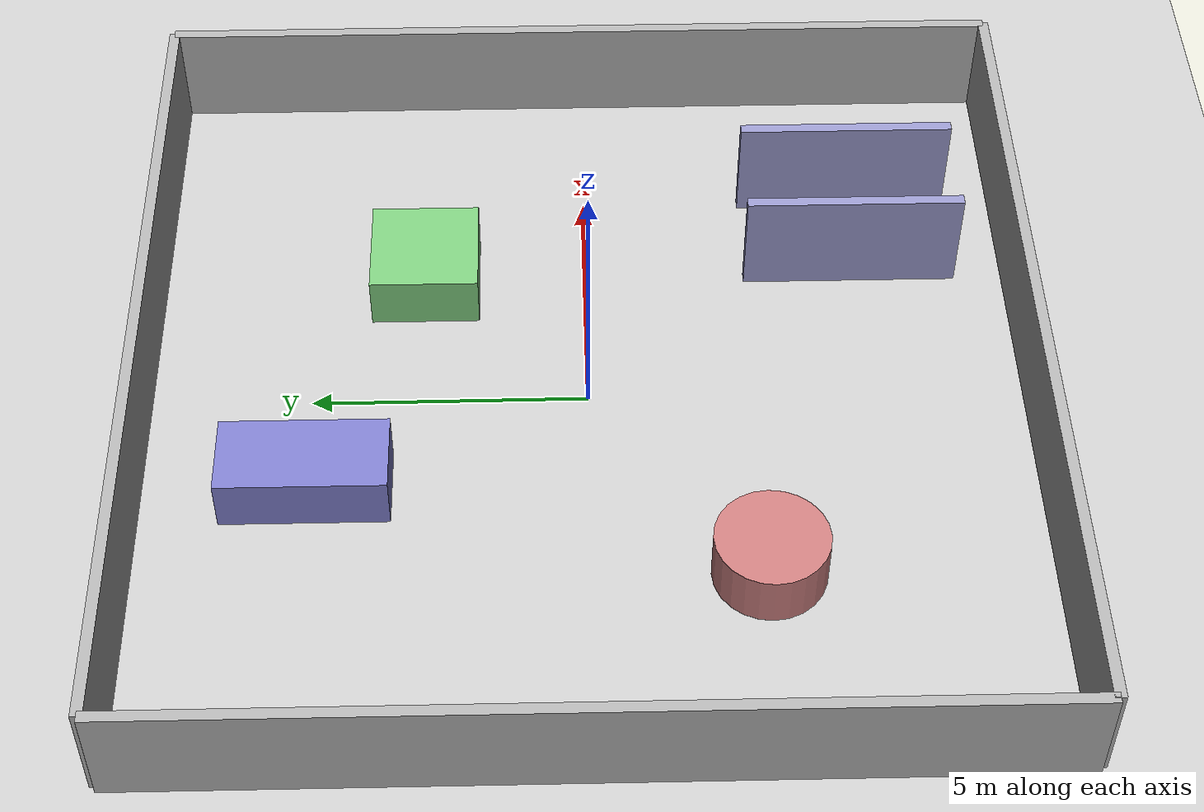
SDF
<?xml version="1.0" ?>
<sdf version="1.8">
  <world name="mapping_world">
    <!-- Essential Gazebo Harmonic plugins -->
    <plugin filename="gz-sim-physics-system" name="gz::sim::systems::Physics"/>
    <plugin filename="gz-sim-user-commands-system" name="gz::sim::systems::UserCommands"/>
    <plugin filename="gz-sim-scene-broadcaster-system" name="gz::sim::systems::SceneBroadcaster"/>
    <plugin filename="gz-sim-sensors-system" name="gz::sim::systems::Sensors">
      <render_engine>ogre2</render_engine>
    </plugin>
    <plugin filename="gz-sim-imu-system" name="gz::sim::systems::Imu"/>

    <!-- Physics settings optimized for simulation -->
    <physics name="1ms" type="ignored">
      <max_step_size>0.001</max_step_size>
      <real_time_factor>1.0</real_time_factor>
    </physics>

    <!-- Ground plane -->
    <include>
      <uri>https://fuel.gazebosim.org/1.0/OpenRobotics/models/Ground Plane</uri>
    </include>

    <!-- Sun for lighting -->
    <include>
      <uri>https://fuel.gazebosim.org/1.0/OpenRobotics/models/Sun</uri>
    </include>

    <!-- Simple room structure for autonomous mapping -->

    <!-- Outer walls -->
    <model name="wall_north">
      <static>true</static>
      <pose>0 8 1 0 0 0</pose>
      <link name="link">
        <collision name="collision">
          <geometry>
            <box>
              <size>16 0.2 2</size>
            </box>
          </geometry>
        </collision>
        <visual name="visual">
          <geometry>
            <box>
              <size>16 0.2 2</size>
            </box>
          </geometry>
          <material>
            <ambient>0.7 0.7 0.7 1</ambient>
            <diffuse>0.7 0.7 0.7 1</diffuse>
          </material>
        </visual>
      </link>
    </model>

    <model name="wall_south">
      <static>true</static>
      <pose>0 -8 1 0 0 0</pose>
      <link name="link">
        <collision name="collision">
          <geometry>
            <box>
              <size>16 0.2 2</size>
            </box>
          </geometry>
        </collision>
        <visual name="visual">
          <geometry>
            <box>
              <size>16 0.2 2</size>
            </box>
          </geometry>
          <material>
            <ambient>0.7 0.7 0.7 1</ambient>
            <diffuse>0.7 0.7 0.7 1</diffuse>
          </material>
        </visual>
      </link>
    </model>

    <model name="wall_east">
      <static>true</static>
      <pose>8 0 1 0 0 0</pose>
      <link name="link">
        <collision name="collision">
          <geometry>
            <box>
              <size>0.2 16 2</size>
            </box>
          </geometry>
        </collision>
        <visual name="visual">
          <geometry>
            <box>
              <size>0.2 16 2</size>
            </box>
          </geometry>
          <material>
            <ambient>0.7 0.7 0.7 1</ambient>
            <diffuse>0.7 0.7 0.7 1</diffuse>
          </material>
        </visual>
      </link>
    </model>

    <model name="wall_west">
      <static>true</static>
      <pose>-8 0 1 0 0 0</pose>
      <link name="link">
        <collision name="collision">
          <geometry>
            <box>
              <size>0.2 16 2</size>
            </box>
          </geometry>
        </collision>
        <visual name="visual">
          <geometry>
            <box>
              <size>0.2 16 2</size>
            </box>
          </geometry>
          <material>
            <ambient>0.7 0.7 0.7 1</ambient>
            <diffuse>0.7 0.7 0.7 1</diffuse>
          </material>
        </visual>
      </link>
    </model>

    <!-- Interior obstacles for interesting mapping -->
    <model name="obstacle_1">
      <static>true</static>
      <pose>3 3 0.5 0 0 0</pose>
      <link name="link">
        <collision name="collision">
          <geometry>
            <box>
              <size>2 2 1</size>
            </box>
          </geometry>
        </collision>
        <visual name="visual">
          <geometry>
            <box>
              <size>2 2 1</size>
            </box>
          </geometry>
          <material>
            <ambient>0.5 0.8 0.5 1</ambient>
            <diffuse>0.5 0.8 0.5 1</diffuse>
          </material>
        </visual>
      </link>
    </model>

    <model name="obstacle_2">
      <static>true</static>
      <pose>-4 -3 0.5 0 0 0</pose>
      <link name="link">
        <collision name="collision">
          <geometry>
            <cylinder>
              <radius>1</radius>
              <length>1</length>
            </cylinder>
          </geometry>
        </collision>
        <visual name="visual">
          <geometry>
            <cylinder>
              <radius>1</radius>
              <length>1</length>
            </cylinder>
          </geometry>
          <material>
            <ambient>0.8 0.5 0.5 1</ambient>
            <diffuse>0.8 0.5 0.5 1</diffuse>
          </material>
        </visual>
      </link>
    </model>

    <model name="obstacle_3">
      <static>true</static>
      <pose>-2 5 0.5 0 0 0</pose>
      <link name="link">
        <collision name="collision">
          <geometry>
            <box>
              <size>1.5 3 1</size>
            </box>
          </geometry>
        </collision>
        <visual name="visual">
          <geometry>
            <box>
              <size>1.5 3 1</size>
            </box>
          </geometry>
          <material>
            <ambient>0.5 0.5 0.8 1</ambient>
            <diffuse>0.5 0.5 0.8 1</diffuse>
          </material>
        </visual>
      </link>
    </model>

    <!-- Small corridor for exploration -->
    <model name="corridor_wall_1">
      <static>true</static>
      <pose>5 -5 1 0 0 1.5708</pose>
      <link name="link">
        <collision name="collision">
          <geometry>
            <box>
              <size>4 0.2 2</size>
            </box>
          </geometry>
        </collision>
        <visual name="visual">
          <geometry>
            <box>
              <size>4 0.2 2</size>
            </box>
          </geometry>
          <material>
            <ambient>0.6 0.6 0.8 1</ambient>
            <diffuse>0.6 0.6 0.8 1</diffuse>
          </material>
        </visual>
      </link>
    </model>

    <model name="corridor_wall_2">
      <static>true</static>
      <pose>3 -5 1 0 0 1.5708</pose>
      <link name="link">
        <collision name="collision">
          <geometry>
            <box>
              <size>4 0.2 2</size>
            </box>
          </geometry>
        </collision>
        <visual name="visual">
          <geometry>
            <box>
              <size>4 0.2 2</size>
            </box>
          </geometry>
          <material>
            <ambient>0.6 0.6 0.8 1</ambient>
            <diffuse>0.6 0.6 0.8 1</diffuse>
          </material>
        </visual>
      </link>
    </model>

  </world>
</sdf>
